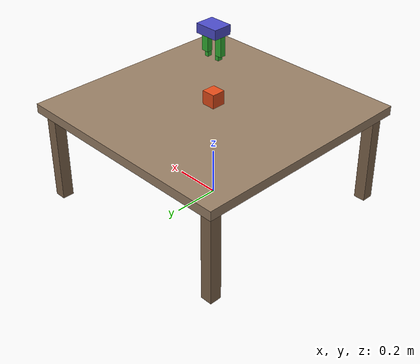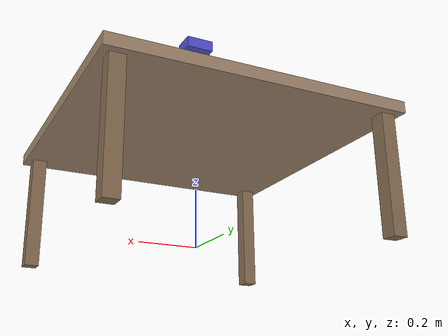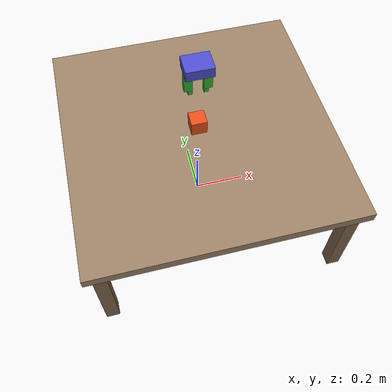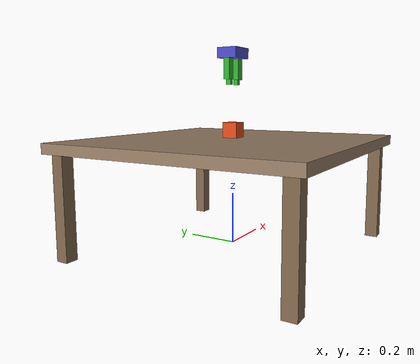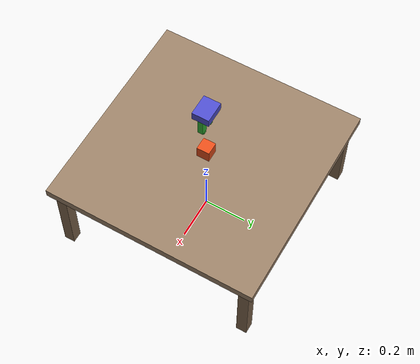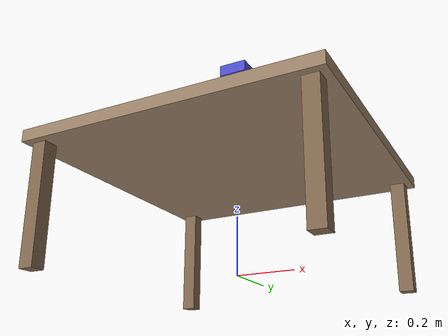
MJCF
<mujoco model="parallel_gripper">

  <compiler angle="radian" autolimits="true"/>

  <option timestep="0.002" gravity="0 0 -9.81" solver="Newton" iterations="50" tolerance="1e-10"/>

  <default>
    <joint limited="true" damping="0.5"/>
    <geom contype="1" conaffinity="1" condim="3" friction="1.0 0.005 0.0001" solimp="0.99 0.99 0.01" solref="0.01 1"/>
  </default>

  <asset>
    <material name="table_mat"  rgba="0.6 0.5 0.4 1"/>
    <material name="object_mat" rgba="0.9 0.3 0.1 1"/>
    <material name="gripper_mat" rgba="0.3 0.3 0.8 1"/>
    <material name="finger_mat"  rgba="0.2 0.7 0.2 1"/>
  </asset>

  <worldbody>

    <!-- Table -->
    <body name="table" pos="0 0 0.4">
      <geom name="table_top" type="box" size="0.5 0.5 0.02"
            material="table_mat" mass="100"/>
      <!-- Table legs -->
      <geom type="box" size="0.025 0.025 0.2" pos=" 0.45  0.45 -0.22" rgba="0.5 0.4 0.3 1"/>
      <geom type="box" size="0.025 0.025 0.2" pos="-0.45  0.45 -0.22" rgba="0.5 0.4 0.3 1"/>
      <geom type="box" size="0.025 0.025 0.2" pos=" 0.45 -0.45 -0.22" rgba="0.5 0.4 0.3 1"/>
      <geom type="box" size="0.025 0.025 0.2" pos="-0.45 -0.45 -0.22" rgba="0.5 0.4 0.3 1"/>
    </body>

    <!-- Object to grasp (small box on the table) -->
    <body name="object" pos="0 0 0.455">
      <freejoint name="object_free"/>
      <geom name="object_geom" type="box" size="0.03 0.03 0.03"
            material="object_mat" mass="0.05"
            friction="1.5 0.005 0.0001"/>
      <site name="object_site" size="0.005"/>
    </body>

    <!-- Gripper base mounted above the table -->
    <body name="gripper_base" pos="0 0 0.75">
      <joint name="gripper_slide_z" type="slide" axis="0 0 1"
             range="-0.35 0.1" damping="10"/>
      <geom name="base_geom" type="box" size="0.05 0.04 0.02"
            material="gripper_mat" mass="0.5"/>

      <!-- Left finger -->
      <body name="left_finger" pos="-0.035 0 -0.02">
        <joint name="left_finger_joint" type="slide" axis="1 0 0"
               range="0.0 0.06" damping="2"/>
        <geom name="left_palm"   type="box" size="0.015 0.012 0.04"
              pos="0 0 -0.04" material="finger_mat" mass="0.05"/>
        <geom name="left_tip"    type="box" size="0.008 0.010 0.01"
              pos="0.007 0 -0.09" material="finger_mat" mass="0.01"
              friction="2.0 0.01 0.001"/>
      </body>

      <!-- Right finger -->
      <body name="right_finger" pos="0.035 0 -0.02">
        <joint name="right_finger_joint" type="slide" axis="-1 0 0"
               range="0.0 0.06" damping="2"/>
        <geom name="right_palm"  type="box" size="0.015 0.012 0.04"
              pos="0 0 -0.04" material="finger_mat" mass="0.05"/>
        <geom name="right_tip"   type="box" size="0.008 0.010 0.01"
              pos="-0.007 0 -0.09" material="finger_mat" mass="0.01"
              friction="2.0 0.01 0.001"/>
      </body>
    </body>

  </worldbody>

  <actuator>
    <!-- Vertical motion: negative = move down -->
    <position name="gripper_z"    joint="gripper_slide_z"
              kp="500" ctrlrange="-0.35 0.1"/>
    <!-- Finger close: positive = close fingers -->
    <position name="left_close"   joint="left_finger_joint"
              kp="100" ctrlrange="0.0 0.06"/>
    <position name="right_close"  joint="right_finger_joint"
              kp="100" ctrlrange="0.0 0.06"/>
  </actuator>

  <sensor>
    <framepos name="object_pos"  objtype="site" objname="object_site"/>
  </sensor>

</mujoco>
